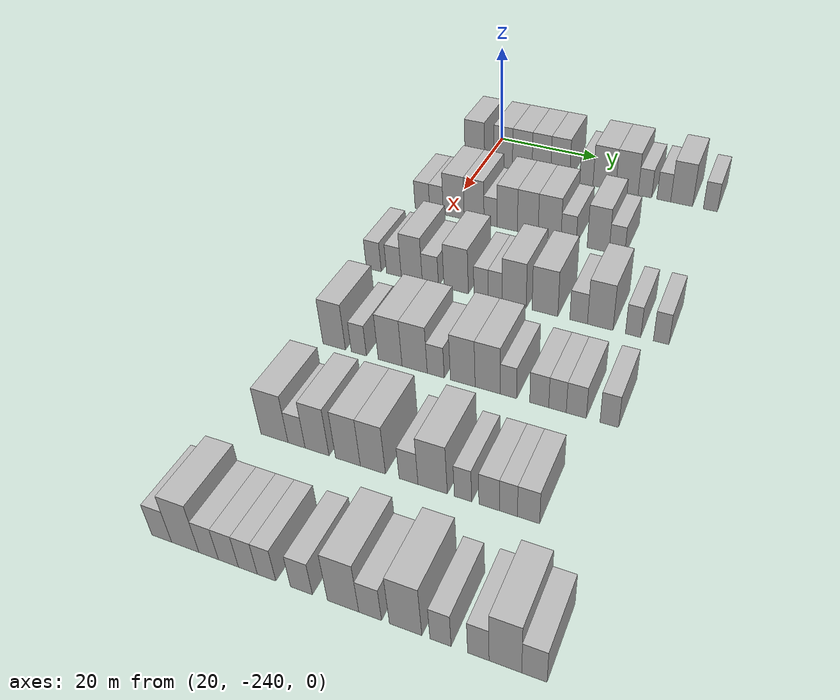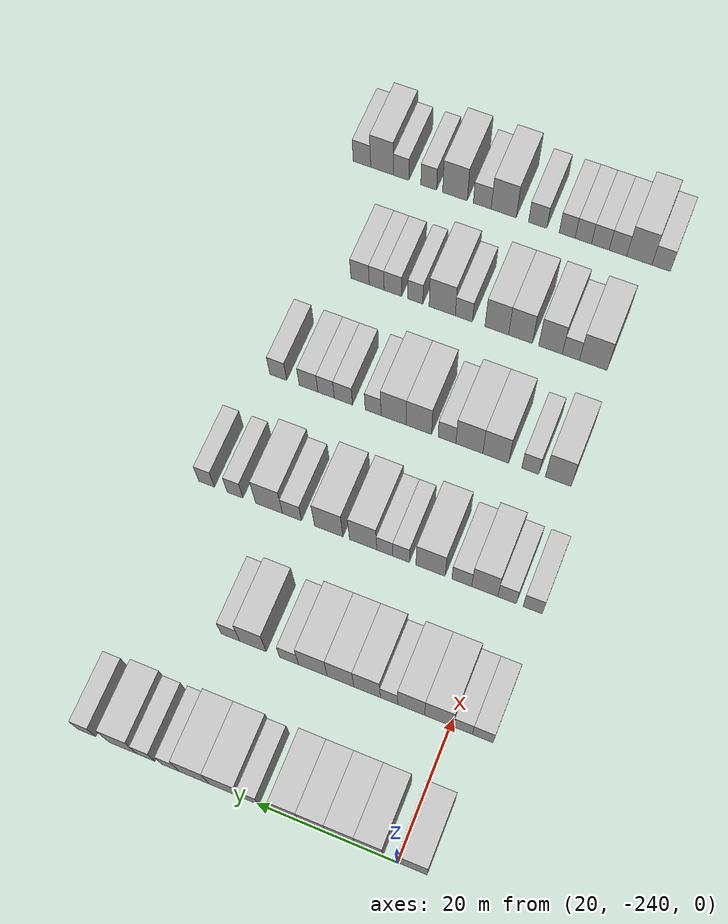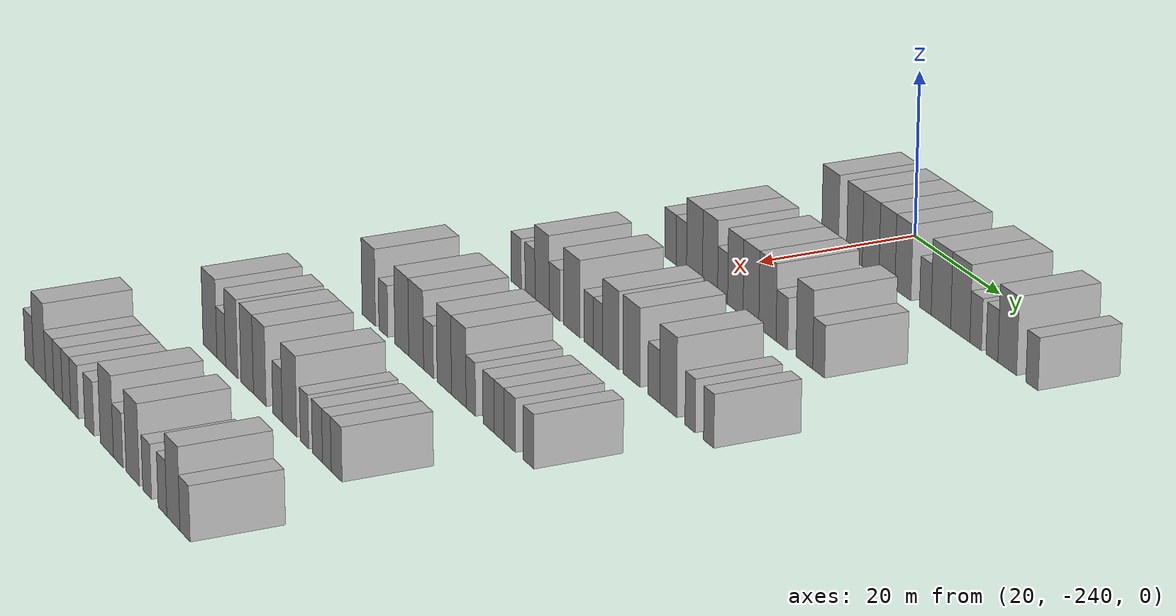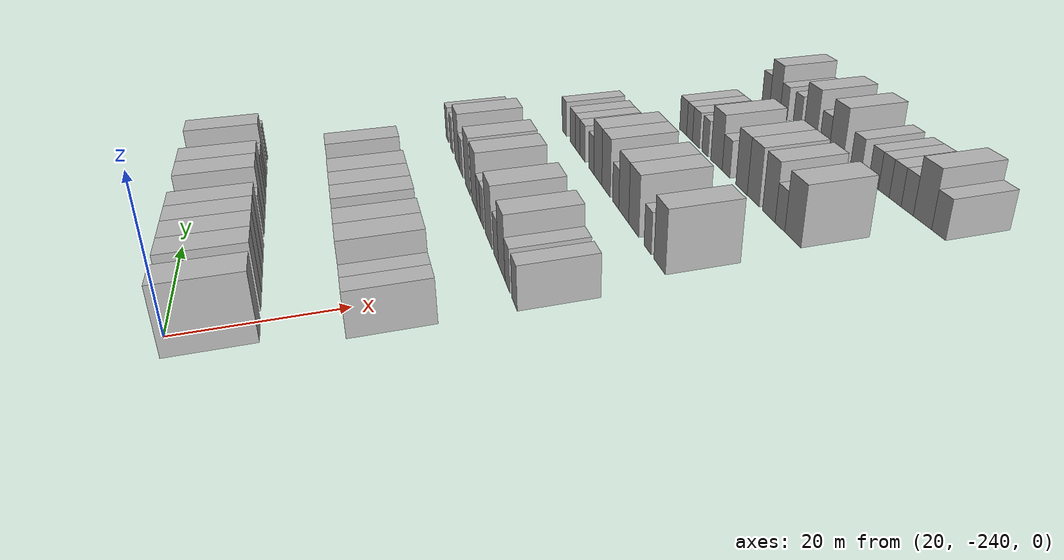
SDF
<sdf version="1.6">
 <world name="default">
  <model name="building_20">
   <static>1</static>
   <pose>25.0000 -241.9784 0 0.000000 0.000000 0.000000</pose>
   <link name="link">
    <pose>0 0 4.50 0 0 0</pose>
    <collision name="collision"><geometry><box><size>10.0000 4.1853 9.0000</size></box></geometry></collision>
    <visual name="visual">
     <cast_shadows>0</cast_shadows>
     <geometry><box><size>10.0000 4.1853 9.0000</size></box></geometry>
     <material>
      <script>
       <uri>model://HANNAS_wall/materials/scripts</uri>
       <uri>model://HANNAS_wall/materials/textures</uri>
       <name>vrc/HANNAS_wall</name>
      </script>
     </material>
    </visual>
   </link>
  </model>
  <model name="building_21">
   <static>1</static>
   <pose>25.0000 -235.9583 0 0.000000 0.000000 0.000000</pose>
   <link name="link">
    <pose>0 0 4.50 0 0 0</pose>
    <collision name="collision"><geometry><box><size>10.0000 3.8551 9.0000</size></box></geometry></collision>
    <visual name="visual">
     <cast_shadows>0</cast_shadows>
     <geometry><box><size>10.0000 3.8551 9.0000</size></box></geometry>
     <material>
      <script>
       <uri>model://HANNAS_wall/materials/scripts</uri>
       <uri>model://HANNAS_wall/materials/textures</uri>
       <name>vrc/HANNAS_wall</name>
      </script>
     </material>
    </visual>
   </link>
  </model>
  <model name="building_22">
   <static>1</static>
   <pose>25.0000 -232.0075 0 0.000000 0.000000 0.000000</pose>
   <link name="link">
    <pose>0 0 4.50 0 0 0</pose>
    <collision name="collision"><geometry><box><size>10.0000 4.0465 9.0000</size></box></geometry></collision>
    <visual name="visual">
     <cast_shadows>0</cast_shadows>
     <geometry><box><size>10.0000 4.0465 9.0000</size></box></geometry>
     <material>
      <script>
       <uri>model://HANNAS_wall/materials/scripts</uri>
       <uri>model://HANNAS_wall/materials/textures</uri>
       <name>vrc/HANNAS_wall</name>
      </script>
     </material>
    </visual>
   </link>
  </model>
  <model name="building_23">
   <static>1</static>
   <pose>25.0000 -228.0677 0 0.000000 0.000000 0.000000</pose>
   <link name="link">
    <pose>0 0 4.50 0 0 0</pose>
    <collision name="collision"><geometry><box><size>10.0000 3.8331 9.0000</size></box></geometry></collision>
    <visual name="visual">
     <cast_shadows>0</cast_shadows>
     <geometry><box><size>10.0000 3.8331 9.0000</size></box></geometry>
     <material>
      <script>
       <uri>model://HANNAS_wall/materials/scripts</uri>
       <uri>model://HANNAS_wall/materials/textures</uri>
       <name>vrc/HANNAS_wall</name>
      </script>
     </material>
    </visual>
   </link>
  </model>
  <model name="building_24">
   <static>1</static>
   <pose>25.0000 -224.2501 0 0.000000 0.000000 0.000000</pose>
   <link name="link">
    <pose>0 0 4.50 0 0 0</pose>
    <collision name="collision"><geometry><box><size>10.0000 3.8020 9.0000</size></box></geometry></collision>
    <visual name="visual">
     <cast_shadows>0</cast_shadows>
     <geometry><box><size>10.0000 3.8020 9.0000</size></box></geometry>
     <material>
      <script>
       <uri>model://HANNAS_wall/materials/scripts</uri>
       <uri>model://HANNAS_wall/materials/textures</uri>
       <name>vrc/HANNAS_wall</name>
      </script>
     </material>
    </visual>
   </link>
  </model>
  <model name="building_25">
   <static>1</static>
   <pose>25.0000 -219.0061 0 0.000000 0.000000 0.000000</pose>
   <link name="link">
    <pose>0 0 3.00 0 0 0</pose>
    <collision name="collision"><geometry><box><size>10.0000 2.6861 6.0000</size></box></geometry></collision>
    <visual name="visual">
     <cast_shadows>0</cast_shadows>
     <geometry><box><size>10.0000 2.6861 6.0000</size></box></geometry>
     <material>
      <script>
       <uri>model://HANNAS_wall/materials/scripts</uri>
       <uri>model://HANNAS_wall/materials/textures</uri>
       <name>vrc/HANNAS_wall</name>
      </script>
     </material>
    </visual>
   </link>
  </model>
  <model name="building_26">
   <static>1</static>
   <pose>25.0000 -215.4294 0 0.000000 0.000000 0.000000</pose>
   <link name="link">
    <pose>0 0 4.50 0 0 0</pose>
    <collision name="collision"><geometry><box><size>10.0000 4.4671 9.0000</size></box></geometry></collision>
    <visual name="visual">
     <cast_shadows>0</cast_shadows>
     <geometry><box><size>10.0000 4.4671 9.0000</size></box></geometry>
     <material>
      <script>
       <uri>model://HANNAS_wall/materials/scripts</uri>
       <uri>model://HANNAS_wall/materials/textures</uri>
       <name>vrc/HANNAS_wall</name>
      </script>
     </material>
    </visual>
   </link>
  </model>
  <model name="building_27">
   <static>1</static>
   <pose>25.0000 -211.0135 0 0.000000 0.000000 0.000000</pose>
   <link name="link">
    <pose>0 0 4.50 0 0 0</pose>
    <collision name="collision"><geometry><box><size>10.0000 4.3647 9.0000</size></box></geometry></collision>
    <visual name="visual">
     <cast_shadows>0</cast_shadows>
     <geometry><box><size>10.0000 4.3647 9.0000</size></box></geometry>
     <material>
      <script>
       <uri>model://HANNAS_wall/materials/scripts</uri>
       <uri>model://HANNAS_wall/materials/textures</uri>
       <name>vrc/HANNAS_wall</name>
      </script>
     </material>
    </visual>
   </link>
  </model>
  <model name="building_28">
   <static>1</static>
   <pose>25.0000 -207.5304 0 0.000000 0.000000 0.000000</pose>
   <link name="link">
    <pose>0 0 3.00 0 0 0</pose>
    <collision name="collision"><geometry><box><size>10.0000 2.6015 6.0000</size></box></geometry></collision>
    <visual name="visual">
     <cast_shadows>0</cast_shadows>
     <geometry><box><size>10.0000 2.6015 6.0000</size></box></geometry>
     <material>
      <script>
       <uri>model://HANNAS_wall/materials/scripts</uri>
       <uri>model://HANNAS_wall/materials/textures</uri>
       <name>vrc/HANNAS_wall</name>
      </script>
     </material>
    </visual>
   </link>
  </model>
  <model name="building_29">
   <static>1</static>
   <pose>25.0000 -203.9215 0 0.000000 0.000000 0.000000</pose>
   <link name="link">
    <pose>0 0 3.00 0 0 0</pose>
    <collision name="collision"><geometry><box><size>10.0000 2.6162 6.0000</size></box></geometry></collision>
    <visual name="visual">
     <cast_shadows>0</cast_shadows>
     <geometry><box><size>10.0000 2.6162 6.0000</size></box></geometry>
     <material>
      <script>
       <uri>model://HANNAS_wall/materials/scripts</uri>
       <uri>model://HANNAS_wall/materials/textures</uri>
       <name>vrc/HANNAS_wall</name>
      </script>
     </material>
    </visual>
   </link>
  </model>
  <model name="building_30">
   <static>1</static>
   <pose>25.0000 -200.5595 0 0.000000 0.000000 0.000000</pose>
   <link name="link">
    <pose>0 0 4.50 0 0 0</pose>
    <collision name="collision"><geometry><box><size>10.0000 4.1078 9.0000</size></box></geometry></collision>
    <visual name="visual">
     <cast_shadows>0</cast_shadows>
     <geometry><box><size>10.0000 4.1078 9.0000</size></box></geometry>
     <material>
      <script>
       <uri>model://HANNAS_wall/materials/scripts</uri>
       <uri>model://HANNAS_wall/materials/textures</uri>
       <name>vrc/HANNAS_wall</name>
      </script>
     </material>
    </visual>
   </link>
  </model>
  <model name="building_31">
   <static>1</static>
   <pose>25.0000 -195.2044 0 0.000000 0.000000 0.000000</pose>
   <link name="link">
    <pose>0 0 3.00 0 0 0</pose>
    <collision name="collision"><geometry><box><size>10.0000 2.6025 6.0000</size></box></geometry></collision>
    <visual name="visual">
     <cast_shadows>0</cast_shadows>
     <geometry><box><size>10.0000 2.6025 6.0000</size></box></geometry>
     <material>
      <script>
       <uri>model://HANNAS_wall/materials/scripts</uri>
       <uri>model://HANNAS_wall/materials/textures</uri>
       <name>vrc/HANNAS_wall</name>
      </script>
     </material>
    </visual>
   </link>
  </model>
  <model name="building_192">
   <static>1</static>
   <pose>44.0000 -244.5426 0 0.000000 0.000000 0.000000</pose>
   <link name="link">
    <pose>0 0 3.00 0 0 0</pose>
    <collision name="collision"><geometry><box><size>10.0000 2.9575 6.0000</size></box></geometry></collision>
    <visual name="visual">
     <cast_shadows>0</cast_shadows>
     <geometry><box><size>10.0000 2.9575 6.0000</size></box></geometry>
     <material>
      <script>
       <uri>model://HANNAS_wall/materials/scripts</uri>
       <uri>model://HANNAS_wall/materials/textures</uri>
       <name>vrc/HANNAS_wall</name>
      </script>
     </material>
    </visual>
   </link>
  </model>
  <model name="building_193">
   <static>1</static>
   <pose>44.0000 -241.7009 0 0.000000 0.000000 0.000000</pose>
   <link name="link">
    <pose>0 0 3.00 0 0 0</pose>
    <collision name="collision"><geometry><box><size>10.0000 2.7259 6.0000</size></box></geometry></collision>
    <visual name="visual">
     <cast_shadows>0</cast_shadows>
     <geometry><box><size>10.0000 2.7259 6.0000</size></box></geometry>
     <material>
      <script>
       <uri>model://HANNAS_wall/materials/scripts</uri>
       <uri>model://HANNAS_wall/materials/textures</uri>
       <name>vrc/HANNAS_wall</name>
      </script>
     </material>
    </visual>
   </link>
  </model>
  <model name="building_194">
   <static>1</static>
   <pose>44.0000 -238.2692 0 0.000000 0.000000 0.000000</pose>
   <link name="link">
    <pose>0 0 4.50 0 0 0</pose>
    <collision name="collision"><geometry><box><size>10.0000 4.1375 9.0000</size></box></geometry></collision>
    <visual name="visual">
     <cast_shadows>0</cast_shadows>
     <geometry><box><size>10.0000 4.1375 9.0000</size></box></geometry>
     <material>
      <script>
       <uri>model://HANNAS_wall/materials/scripts</uri>
       <uri>model://HANNAS_wall/materials/textures</uri>
       <name>vrc/HANNAS_wall</name>
      </script>
     </material>
    </visual>
   </link>
  </model>
  <model name="building_195">
   <static>1</static>
   <pose>44.0000 -234.2643 0 0.000000 0.000000 0.000000</pose>
   <link name="link">
    <pose>0 0 4.50 0 0 0</pose>
    <collision name="collision"><geometry><box><size>10.0000 3.8724 9.0000</size></box></geometry></collision>
    <visual name="visual">
     <cast_shadows>0</cast_shadows>
     <geometry><box><size>10.0000 3.8724 9.0000</size></box></geometry>
     <material>
      <script>
       <uri>model://HANNAS_wall/materials/scripts</uri>
       <uri>model://HANNAS_wall/materials/textures</uri>
       <name>vrc/HANNAS_wall</name>
      </script>
     </material>
    </visual>
   </link>
  </model>
  <model name="building_196">
   <static>1</static>
   <pose>44.0000 -231.0574 0 0.000000 0.000000 0.000000</pose>
   <link name="link">
    <pose>0 0 3.00 0 0 0</pose>
    <collision name="collision"><geometry><box><size>10.0000 2.5414 6.0000</size></box></geometry></collision>
    <visual name="visual">
     <cast_shadows>0</cast_shadows>
     <geometry><box><size>10.0000 2.5414 6.0000</size></box></geometry>
     <material>
      <script>
       <uri>model://HANNAS_wall/materials/scripts</uri>
       <uri>model://HANNAS_wall/materials/textures</uri>
       <name>vrc/HANNAS_wall</name>
      </script>
     </material>
    </visual>
   </link>
  </model>
  <model name="building_197">
   <static>1</static>
   <pose>44.0000 -227.8573 0 0.000000 0.000000 0.000000</pose>
   <link name="link">
    <pose>0 0 4.50 0 0 0</pose>
    <collision name="collision"><geometry><box><size>10.0000 3.8588 9.0000</size></box></geometry></collision>
    <visual name="visual">
     <cast_shadows>0</cast_shadows>
     <geometry><box><size>10.0000 3.8588 9.0000</size></box></geometry>
     <material>
      <script>
       <uri>model://HANNAS_wall/materials/scripts</uri>
       <uri>model://HANNAS_wall/materials/textures</uri>
       <name>vrc/HANNAS_wall</name>
      </script>
     </material>
    </visual>
   </link>
  </model>
  <model name="building_198">
   <static>1</static>
   <pose>44.0000 -223.9796 0 0.000000 0.000000 0.000000</pose>
   <link name="link">
    <pose>0 0 4.50 0 0 0</pose>
    <collision name="collision"><geometry><box><size>10.0000 3.8966 9.0000</size></box></geometry></collision>
    <visual name="visual">
     <cast_shadows>0</cast_shadows>
     <geometry><box><size>10.0000 3.8966 9.0000</size></box></geometry>
     <material>
      <script>
       <uri>model://HANNAS_wall/materials/scripts</uri>
       <uri>model://HANNAS_wall/materials/textures</uri>
       <name>vrc/HANNAS_wall</name>
      </script>
     </material>
    </visual>
   </link>
  </model>
  <model name="building_199">
   <static>1</static>
   <pose>44.0000 -219.9167 0 0.000000 0.000000 0.000000</pose>
   <link name="link">
    <pose>0 0 4.50 0 0 0</pose>
    <collision name="collision"><geometry><box><size>10.0000 4.2292 9.0000</size></box></geometry></collision>
    <visual name="visual">
     <cast_shadows>0</cast_shadows>
     <geometry><box><size>10.0000 4.2292 9.0000</size></box></geometry>
     <material>
      <script>
       <uri>model://HANNAS_wall/materials/scripts</uri>
       <uri>model://HANNAS_wall/materials/textures</uri>
       <name>vrc/HANNAS_wall</name>
      </script>
     </material>
    </visual>
   </link>
  </model>
  <model name="building_200">
   <static>1</static>
   <pose>44.0000 -216.3954 0 0.000000 0.000000 0.000000</pose>
   <link name="link">
    <pose>0 0 3.00 0 0 0</pose>
    <collision name="collision"><geometry><box><size>10.0000 2.8133 6.0000</size></box></geometry></collision>
    <visual name="visual">
     <cast_shadows>0</cast_shadows>
     <geometry><box><size>10.0000 2.8133 6.0000</size></box></geometry>
     <material>
      <script>
       <uri>model://HANNAS_wall/materials/scripts</uri>
       <uri>model://HANNAS_wall/materials/textures</uri>
       <name>vrc/HANNAS_wall</name>
      </script>
     </material>
    </visual>
   </link>
  </model>
  <model name="building_201">
   <static>1</static>
   <pose>44.0000 -211.0140 0 0.000000 0.000000 0.000000</pose>
   <link name="link">
    <pose>0 0 4.50 0 0 0</pose>
    <collision name="collision"><geometry><box><size>10.0000 3.9497 9.0000</size></box></geometry></collision>
    <visual name="visual">
     <cast_shadows>0</cast_shadows>
     <geometry><box><size>10.0000 3.9497 9.0000</size></box></geometry>
     <material>
      <script>
       <uri>model://HANNAS_wall/materials/scripts</uri>
       <uri>model://HANNAS_wall/materials/textures</uri>
       <name>vrc/HANNAS_wall</name>
      </script>
     </material>
    </visual>
   </link>
  </model>
  <model name="building_202">
   <static>1</static>
   <pose>44.0000 -207.6491 0 0.000000 0.000000 0.000000</pose>
   <link name="link">
    <pose>0 0 3.00 0 0 0</pose>
    <collision name="collision"><geometry><box><size>10.0000 2.7800 6.0000</size></box></geometry></collision>
    <visual name="visual">
     <cast_shadows>0</cast_shadows>
     <geometry><box><size>10.0000 2.7800 6.0000</size></box></geometry>
     <material>
      <script>
       <uri>model://HANNAS_wall/materials/scripts</uri>
       <uri>model://HANNAS_wall/materials/textures</uri>
       <name>vrc/HANNAS_wall</name>
      </script>
     </material>
    </visual>
   </link>
  </model>
  <model name="building_360">
   <static>1</static>
   <pose>63.0000 -244.7106 0 0.000000 0.000000 0.000000</pose>
   <link name="link">
    <pose>0 0 3.00 0 0 0</pose>
    <collision name="collision"><geometry><box><size>10.0000 2.8154 6.0000</size></box></geometry></collision>
    <visual name="visual">
     <cast_shadows>0</cast_shadows>
     <geometry><box><size>10.0000 2.8154 6.0000</size></box></geometry>
     <material>
      <script>
       <uri>model://HANNAS_wall/materials/scripts</uri>
       <uri>model://HANNAS_wall/materials/textures</uri>
       <name>vrc/HANNAS_wall</name>
      </script>
     </material>
    </visual>
   </link>
  </model>
  <model name="building_361">
   <static>1</static>
   <pose>63.0000 -240.9330 0 0.000000 0.000000 0.000000</pose>
   <link name="link">
    <pose>0 0 3.00 0 0 0</pose>
    <collision name="collision"><geometry><box><size>10.0000 2.7398 6.0000</size></box></geometry></collision>
    <visual name="visual">
     <cast_shadows>0</cast_shadows>
     <geometry><box><size>10.0000 2.7398 6.0000</size></box></geometry>
     <material>
      <script>
       <uri>model://HANNAS_wall/materials/scripts</uri>
       <uri>model://HANNAS_wall/materials/textures</uri>
       <name>vrc/HANNAS_wall</name>
      </script>
     </material>
    </visual>
   </link>
  </model>
  <model name="building_362">
   <static>1</static>
   <pose>63.0000 -237.6325 0 0.000000 0.000000 0.000000</pose>
   <link name="link">
    <pose>0 0 4.50 0 0 0</pose>
    <collision name="collision"><geometry><box><size>10.0000 3.8611 9.0000</size></box></geometry></collision>
    <visual name="visual">
     <cast_shadows>0</cast_shadows>
     <geometry><box><size>10.0000 3.8611 9.0000</size></box></geometry>
     <material>
      <script>
       <uri>model://HANNAS_wall/materials/scripts</uri>
       <uri>model://HANNAS_wall/materials/textures</uri>
       <name>vrc/HANNAS_wall</name>
      </script>
     </material>
    </visual>
   </link>
  </model>
  <model name="building_363">
   <static>1</static>
   <pose>63.0000 -234.2293 0 0.000000 0.000000 0.000000</pose>
   <link name="link">
    <pose>0 0 3.00 0 0 0</pose>
    <collision name="collision"><geometry><box><size>10.0000 2.9455 6.0000</size></box></geometry></collision>
    <visual name="visual">
     <cast_shadows>0</cast_shadows>
     <geometry><box><size>10.0000 2.9455 6.0000</size></box></geometry>
     <material>
      <script>
       <uri>model://HANNAS_wall/materials/scripts</uri>
       <uri>model://HANNAS_wall/materials/textures</uri>
       <name>vrc/HANNAS_wall</name>
      </script>
     </material>
    </visual>
   </link>
  </model>
  <model name="building_364">
   <static>1</static>
   <pose>63.0000 -229.5811 0 0.000000 0.000000 0.000000</pose>
   <link name="link">
    <pose>0 0 4.50 0 0 0</pose>
    <collision name="collision"><geometry><box><size>10.0000 4.3509 9.0000</size></box></geometry></collision>
    <visual name="visual">
     <cast_shadows>0</cast_shadows>
     <geometry><box><size>10.0000 4.3509 9.0000</size></box></geometry>
     <material>
      <script>
       <uri>model://HANNAS_wall/materials/scripts</uri>
       <uri>model://HANNAS_wall/materials/textures</uri>
       <name>vrc/HANNAS_wall</name>
      </script>
     </material>
    </visual>
   </link>
  </model>
  <model name="building_365">
   <static>1</static>
   <pose>63.0000 -225.1615 0 0.000000 0.000000 0.000000</pose>
   <link name="link">
    <pose>0 0 3.00 0 0 0</pose>
    <collision name="collision"><geometry><box><size>10.0000 2.4884 6.0000</size></box></geometry></collision>
    <visual name="visual">
     <cast_shadows>0</cast_shadows>
     <geometry><box><size>10.0000 2.4884 6.0000</size></box></geometry>
     <material>
      <script>
       <uri>model://HANNAS_wall/materials/scripts</uri>
       <uri>model://HANNAS_wall/materials/textures</uri>
       <name>vrc/HANNAS_wall</name>
      </script>
     </material>
    </visual>
   </link>
  </model>
  <model name="building_366">
   <static>1</static>
   <pose>63.0000 -222.7112 0 0.000000 0.000000 0.000000</pose>
   <link name="link">
    <pose>0 0 3.00 0 0 0</pose>
    <collision name="collision"><geometry><box><size>10.0000 2.4122 6.0000</size></box></geometry></collision>
    <visual name="visual">
     <cast_shadows>0</cast_shadows>
     <geometry><box><size>10.0000 2.4122 6.0000</size></box></geometry>
     <material>
      <script>
       <uri>model://HANNAS_wall/materials/scripts</uri>
       <uri>model://HANNAS_wall/materials/textures</uri>
       <name>vrc/HANNAS_wall</name>
      </script>
     </material>
    </visual>
   </link>
  </model>
  <model name="building_367">
   <static>1</static>
   <pose>63.0000 -219.4327 0 0.000000 0.000000 0.000000</pose>
   <link name="link">
    <pose>0 0 4.50 0 0 0</pose>
    <collision name="collision"><geometry><box><size>10.0000 4.1448 9.0000</size></box></geometry></collision>
    <visual name="visual">
     <cast_shadows>0</cast_shadows>
     <geometry><box><size>10.0000 4.1448 9.0000</size></box></geometry>
     <material>
      <script>
       <uri>model://HANNAS_wall/materials/scripts</uri>
       <uri>model://HANNAS_wall/materials/textures</uri>
       <name>vrc/HANNAS_wall</name>
      </script>
     </material>
    </visual>
   </link>
  </model>
  <model name="building_368">
   <static>1</static>
   <pose>63.0000 -214.1895 0 0.000000 0.000000 0.000000</pose>
   <link name="link">
    <pose>0 0 4.50 0 0 0</pose>
    <collision name="collision"><geometry><box><size>10.0000 4.3415 9.0000</size></box></geometry></collision>
    <visual name="visual">
     <cast_shadows>0</cast_shadows>
     <geometry><box><size>10.0000 4.3415 9.0000</size></box></geometry>
     <material>
      <script>
       <uri>model://HANNAS_wall/materials/scripts</uri>
       <uri>model://HANNAS_wall/materials/textures</uri>
       <name>vrc/HANNAS_wall</name>
      </script>
     </material>
    </visual>
   </link>
  </model>
  <model name="building_369">
   <static>1</static>
   <pose>63.0000 -208.5668 0 0.000000 0.000000 0.000000</pose>
   <link name="link">
    <pose>0 0 3.00 0 0 0</pose>
    <collision name="collision"><geometry><box><size>10.0000 2.9040 6.0000</size></box></geometry></collision>
    <visual name="visual">
     <cast_shadows>0</cast_shadows>
     <geometry><box><size>10.0000 2.9040 6.0000</size></box></geometry>
     <material>
      <script>
       <uri>model://HANNAS_wall/materials/scripts</uri>
       <uri>model://HANNAS_wall/materials/textures</uri>
       <name>vrc/HANNAS_wall</name>
      </script>
     </material>
    </visual>
   </link>
  </model>
  <model name="building_370">
   <static>1</static>
   <pose>63.0000 -205.0357 0 0.000000 0.000000 0.000000</pose>
   <link name="link">
    <pose>0 0 4.50 0 0 0</pose>
    <collision name="collision"><geometry><box><size>10.0000 4.1581 9.0000</size></box></geometry></collision>
    <visual name="visual">
     <cast_shadows>0</cast_shadows>
     <geometry><box><size>10.0000 4.1581 9.0000</size></box></geometry>
     <material>
      <script>
       <uri>model://HANNAS_wall/materials/scripts</uri>
       <uri>model://HANNAS_wall/materials/textures</uri>
       <name>vrc/HANNAS_wall</name>
      </script>
     </material>
    </visual>
   </link>
  </model>
  <model name="building_371">
   <static>1</static>
   <pose>63.0000 -199.7404 0 0.000000 0.000000 0.000000</pose>
   <link name="link">
    <pose>0 0 3.00 0 0 0</pose>
    <collision name="collision"><geometry><box><size>10.0000 2.4325 6.0000</size></box></geometry></collision>
    <visual name="visual">
     <cast_shadows>0</cast_shadows>
     <geometry><box><size>10.0000 2.4325 6.0000</size></box></geometry>
     <material>
      <script>
       <uri>model://HANNAS_wall/materials/scripts</uri>
       <uri>model://HANNAS_wall/materials/textures</uri>
       <name>vrc/HANNAS_wall</name>
      </script>
     </material>
    </visual>
   </link>
  </model>
  <model name="building_372">
   <static>1</static>
   <pose>63.0000 -195.3007 0 0.000000 0.000000 0.000000</pose>
   <link name="link">
    <pose>0 0 3.00 0 0 0</pose>
    <collision name="collision"><geometry><box><size>10.0000 2.4469 6.0000</size></box></geometry></collision>
    <visual name="visual">
     <cast_shadows>0</cast_shadows>
     <geometry><box><size>10.0000 2.4469 6.0000</size></box></geometry>
     <material>
      <script>
       <uri>model://HANNAS_wall/materials/scripts</uri>
       <uri>model://HANNAS_wall/materials/textures</uri>
       <name>vrc/HANNAS_wall</name>
      </script>
     </material>
    </visual>
   </link>
  </model>
  <model name="building_534">
   <static>1</static>
   <pose>82.0000 -241.6577 0 0.000000 0.000000 0.000000</pose>
   <link name="link">
    <pose>0 0 4.50 0 0 0</pose>
    <collision name="collision"><geometry><box><size>10.0000 3.9068 9.0000</size></box></geometry></collision>
    <visual name="visual">
     <cast_shadows>0</cast_shadows>
     <geometry><box><size>10.0000 3.9068 9.0000</size></box></geometry>
     <material>
      <script>
       <uri>model://HANNAS_wall/materials/scripts</uri>
       <uri>model://HANNAS_wall/materials/textures</uri>
       <name>vrc/HANNAS_wall</name>
      </script>
     </material>
    </visual>
   </link>
  </model>
  <model name="building_535">
   <static>1</static>
   <pose>82.0000 -237.4141 0 0.000000 0.000000 0.000000</pose>
   <link name="link">
    <pose>0 0 3.00 0 0 0</pose>
    <collision name="collision"><geometry><box><size>10.0000 2.5805 6.0000</size></box></geometry></collision>
    <visual name="visual">
     <cast_shadows>0</cast_shadows>
     <geometry><box><size>10.0000 2.5805 6.0000</size></box></geometry>
     <material>
      <script>
       <uri>model://HANNAS_wall/materials/scripts</uri>
       <uri>model://HANNAS_wall/materials/textures</uri>
       <name>vrc/HANNAS_wall</name>
      </script>
     </material>
    </visual>
   </link>
  </model>
  <model name="building_536">
   <static>1</static>
   <pose>82.0000 -232.1395 0 0.000000 0.000000 0.000000</pose>
   <link name="link">
    <pose>0 0 4.50 0 0 0</pose>
    <collision name="collision"><geometry><box><size>10.0000 3.9686 9.0000</size></box></geometry></collision>
    <visual name="visual">
     <cast_shadows>0</cast_shadows>
     <geometry><box><size>10.0000 3.9686 9.0000</size></box></geometry>
     <material>
      <script>
       <uri>model://HANNAS_wall/materials/scripts</uri>
       <uri>model://HANNAS_wall/materials/textures</uri>
       <name>vrc/HANNAS_wall</name>
      </script>
     </material>
    </visual>
   </link>
  </model>
  <model name="building_537">
   <static>1</static>
   <pose>82.0000 -228.0844 0 0.000000 0.000000 0.000000</pose>
   <link name="link">
    <pose>0 0 4.50 0 0 0</pose>
    <collision name="collision"><geometry><box><size>10.0000 4.1416 9.0000</size></box></geometry></collision>
    <visual name="visual">
     <cast_shadows>0</cast_shadows>
     <geometry><box><size>10.0000 4.1416 9.0000</size></box></geometry>
     <material>
      <script>
       <uri>model://HANNAS_wall/materials/scripts</uri>
       <uri>model://HANNAS_wall/materials/textures</uri>
       <name>vrc/HANNAS_wall</name>
      </script>
     </material>
    </visual>
   </link>
  </model>
  <model name="building_538">
   <static>1</static>
   <pose>82.0000 -224.6398 0 0.000000 0.000000 0.000000</pose>
   <link name="link">
    <pose>0 0 3.00 0 0 0</pose>
    <collision name="collision"><geometry><box><size>10.0000 2.7476 6.0000</size></box></geometry></collision>
    <visual name="visual">
     <cast_shadows>0</cast_shadows>
     <geometry><box><size>10.0000 2.7476 6.0000</size></box></geometry>
     <material>
      <script>
       <uri>model://HANNAS_wall/materials/scripts</uri>
       <uri>model://HANNAS_wall/materials/textures</uri>
       <name>vrc/HANNAS_wall</name>
      </script>
     </material>
    </visual>
   </link>
  </model>
  <model name="building_539">
   <static>1</static>
   <pose>82.0000 -220.3078 0 0.000000 0.000000 0.000000</pose>
   <link name="link">
    <pose>0 0 4.50 0 0 0</pose>
    <collision name="collision"><geometry><box><size>10.0000 3.9163 9.0000</size></box></geometry></collision>
    <visual name="visual">
     <cast_shadows>0</cast_shadows>
     <geometry><box><size>10.0000 3.9163 9.0000</size></box></geometry>
     <material>
      <script>
       <uri>model://HANNAS_wall/materials/scripts</uri>
       <uri>model://HANNAS_wall/materials/textures</uri>
       <name>vrc/HANNAS_wall</name>
      </script>
     </material>
    </visual>
   </link>
  </model>
  <model name="building_540">
   <static>1</static>
   <pose>82.0000 -216.3702 0 0.000000 0.000000 0.000000</pose>
   <link name="link">
    <pose>0 0 4.50 0 0 0</pose>
    <collision name="collision"><geometry><box><size>10.0000 3.9590 9.0000</size></box></geometry></collision>
    <visual name="visual">
     <cast_shadows>0</cast_shadows>
     <geometry><box><size>10.0000 3.9590 9.0000</size></box></geometry>
     <material>
      <script>
       <uri>model://HANNAS_wall/materials/scripts</uri>
       <uri>model://HANNAS_wall/materials/textures</uri>
       <name>vrc/HANNAS_wall</name>
      </script>
     </material>
    </visual>
   </link>
  </model>
  <model name="building_541">
   <static>1</static>
   <pose>82.0000 -213.1465 0 0.000000 0.000000 0.000000</pose>
   <link name="link">
    <pose>0 0 3.00 0 0 0</pose>
    <collision name="collision"><geometry><box><size>10.0000 2.4882 6.0000</size></box></geometry></collision>
    <visual name="visual">
     <cast_shadows>0</cast_shadows>
     <geometry><box><size>10.0000 2.4882 6.0000</size></box></geometry>
     <material>
      <script>
       <uri>model://HANNAS_wall/materials/scripts</uri>
       <uri>model://HANNAS_wall/materials/textures</uri>
       <name>vrc/HANNAS_wall</name>
      </script>
     </material>
    </visual>
   </link>
  </model>
  <model name="building_542">
   <static>1</static>
   <pose>82.0000 -208.4691 0 0.000000 0.000000 0.000000</pose>
   <link name="link">
    <pose>0 0 3.00 0 0 0</pose>
    <collision name="collision"><geometry><box><size>10.0000 2.8666 6.0000</size></box></geometry></collision>
    <visual name="visual">
     <cast_shadows>0</cast_shadows>
     <geometry><box><size>10.0000 2.8666 6.0000</size></box></geometry>
     <material>
      <script>
       <uri>model://HANNAS_wall/materials/scripts</uri>
       <uri>model://HANNAS_wall/materials/textures</uri>
       <name>vrc/HANNAS_wall</name>
      </script>
     </material>
    </visual>
   </link>
  </model>
  <model name="building_543">
   <static>1</static>
   <pose>82.0000 -205.7301 0 0.000000 0.000000 0.000000</pose>
   <link name="link">
    <pose>0 0 3.00 0 0 0</pose>
    <collision name="collision"><geometry><box><size>10.0000 2.6114 6.0000</size></box></geometry></collision>
    <visual name="visual">
     <cast_shadows>0</cast_shadows>
     <geometry><box><size>10.0000 2.6114 6.0000</size></box></geometry>
     <material>
      <script>
       <uri>model://HANNAS_wall/materials/scripts</uri>
       <uri>model://HANNAS_wall/materials/textures</uri>
       <name>vrc/HANNAS_wall</name>
      </script>
     </material>
    </visual>
   </link>
  </model>
  <model name="building_544">
   <static>1</static>
   <pose>82.0000 -202.9427 0 0.000000 0.000000 0.000000</pose>
   <link name="link">
    <pose>0 0 3.00 0 0 0</pose>
    <collision name="collision"><geometry><box><size>10.0000 2.9634 6.0000</size></box></geometry></collision>
    <visual name="visual">
     <cast_shadows>0</cast_shadows>
     <geometry><box><size>10.0000 2.9634 6.0000</size></box></geometry>
     <material>
      <script>
       <uri>model://HANNAS_wall/materials/scripts</uri>
       <uri>model://HANNAS_wall/materials/textures</uri>
       <name>vrc/HANNAS_wall</name>
      </script>
     </material>
    </visual>
   </link>
  </model>
  <model name="building_545">
   <static>1</static>
   <pose>82.0000 -198.1142 0 0.000000 0.000000 0.000000</pose>
   <link name="link">
    <pose>0 0 3.00 0 0 0</pose>
    <collision name="collision"><geometry><box><size>10.0000 2.6937 6.0000</size></box></geometry></collision>
    <visual name="visual">
     <cast_shadows>0</cast_shadows>
     <geometry><box><size>10.0000 2.6937 6.0000</size></box></geometry>
     <material>
      <script>
       <uri>model://HANNAS_wall/materials/scripts</uri>
       <uri>model://HANNAS_wall/materials/textures</uri>
       <name>vrc/HANNAS_wall</name>
      </script>
     </material>
    </visual>
   </link>
  </model>
  <model name="building_713">
   <static>1</static>
   <pose>101.0000 -240.3343 0 0.000000 0.000000 0.000000</pose>
   <link name="link">
    <pose>0 0 4.50 0 0 0</pose>
    <collision name="collision"><geometry><box><size>10.0000 4.3068 9.0000</size></box></geometry></collision>
    <visual name="visual">
     <cast_shadows>0</cast_shadows>
     <geometry><box><size>10.0000 4.3068 9.0000</size></box></geometry>
     <material>
      <script>
       <uri>model://HANNAS_wall/materials/scripts</uri>
       <uri>model://HANNAS_wall/materials/textures</uri>
       <name>vrc/HANNAS_wall</name>
      </script>
     </material>
    </visual>
   </link>
  </model>
  <model name="building_714">
   <static>1</static>
   <pose>101.0000 -236.8385 0 0.000000 0.000000 0.000000</pose>
   <link name="link">
    <pose>0 0 3.00 0 0 0</pose>
    <collision name="collision"><geometry><box><size>10.0000 2.6846 6.0000</size></box></geometry></collision>
    <visual name="visual">
     <cast_shadows>0</cast_shadows>
     <geometry><box><size>10.0000 2.6846 6.0000</size></box></geometry>
     <material>
      <script>
       <uri>model://HANNAS_wall/materials/scripts</uri>
       <uri>model://HANNAS_wall/materials/textures</uri>
       <name>vrc/HANNAS_wall</name>
      </script>
     </material>
    </visual>
   </link>
  </model>
  <model name="building_715">
   <static>1</static>
   <pose>101.0000 -233.6472 0 0.000000 0.000000 0.000000</pose>
   <link name="link">
    <pose>0 0 4.50 0 0 0</pose>
    <collision name="collision"><geometry><box><size>10.0000 3.6981 9.0000</size></box></geometry></collision>
    <visual name="visual">
     <cast_shadows>0</cast_shadows>
     <geometry><box><size>10.0000 3.6981 9.0000</size></box></geometry>
     <material>
      <script>
       <uri>model://HANNAS_wall/materials/scripts</uri>
       <uri>model://HANNAS_wall/materials/textures</uri>
       <name>vrc/HANNAS_wall</name>
      </script>
     </material>
    </visual>
   </link>
  </model>
  <model name="building_716">
   <static>1</static>
   <pose>101.0000 -228.9244 0 0.000000 0.000000 0.000000</pose>
   <link name="link">
    <pose>0 0 4.50 0 0 0</pose>
    <collision name="collision"><geometry><box><size>10.0000 3.7474 9.0000</size></box></geometry></collision>
    <visual name="visual">
     <cast_shadows>0</cast_shadows>
     <geometry><box><size>10.0000 3.7474 9.0000</size></box></geometry>
     <material>
      <script>
       <uri>model://HANNAS_wall/materials/scripts</uri>
       <uri>model://HANNAS_wall/materials/textures</uri>
       <name>vrc/HANNAS_wall</name>
      </script>
     </material>
    </visual>
   </link>
  </model>
  <model name="building_717">
   <static>1</static>
   <pose>101.0000 -225.1812 0 0.000000 0.000000 0.000000</pose>
   <link name="link">
    <pose>0 0 4.50 0 0 0</pose>
    <collision name="collision"><geometry><box><size>10.0000 3.7392 9.0000</size></box></geometry></collision>
    <visual name="visual">
     <cast_shadows>0</cast_shadows>
     <geometry><box><size>10.0000 3.7392 9.0000</size></box></geometry>
     <material>
      <script>
       <uri>model://HANNAS_wall/materials/scripts</uri>
       <uri>model://HANNAS_wall/materials/textures</uri>
       <name>vrc/HANNAS_wall</name>
      </script>
     </material>
    </visual>
   </link>
  </model>
  <model name="building_718">
   <static>1</static>
   <pose>101.0000 -219.9389 0 0.000000 0.000000 0.000000</pose>
   <link name="link">
    <pose>0 0 3.00 0 0 0</pose>
    <collision name="collision"><geometry><box><size>10.0000 2.7453 6.0000</size></box></geometry></collision>
    <visual name="visual">
     <cast_shadows>0</cast_shadows>
     <geometry><box><size>10.0000 2.7453 6.0000</size></box></geometry>
     <material>
      <script>
       <uri>model://HANNAS_wall/materials/scripts</uri>
       <uri>model://HANNAS_wall/materials/textures</uri>
       <name>vrc/HANNAS_wall</name>
      </script>
     </material>
    </visual>
   </link>
  </model>
  <model name="building_719">
   <static>1</static>
   <pose>101.0000 -216.4735 0 0.000000 0.000000 0.000000</pose>
   <link name="link">
    <pose>0 0 4.50 0 0 0</pose>
    <collision name="collision"><geometry><box><size>10.0000 4.1855 9.0000</size></box></geometry></collision>
    <visual name="visual">
     <cast_shadows>0</cast_shadows>
     <geometry><box><size>10.0000 4.1855 9.0000</size></box></geometry>
     <material>
      <script>
       <uri>model://HANNAS_wall/materials/scripts</uri>
       <uri>model://HANNAS_wall/materials/textures</uri>
       <name>vrc/HANNAS_wall</name>
      </script>
     </material>
    </visual>
   </link>
  </model>
  <model name="building_720">
   <static>1</static>
   <pose>101.0000 -212.1733 0 0.000000 0.000000 0.000000</pose>
   <link name="link">
    <pose>0 0 3.00 0 0 0</pose>
    <collision name="collision"><geometry><box><size>10.0000 2.4150 6.0000</size></box></geometry></collision>
    <visual name="visual">
     <cast_shadows>0</cast_shadows>
     <geometry><box><size>10.0000 2.4150 6.0000</size></box></geometry>
     <material>
      <script>
       <uri>model://HANNAS_wall/materials/scripts</uri>
       <uri>model://HANNAS_wall/materials/textures</uri>
       <name>vrc/HANNAS_wall</name>
      </script>
     </material>
    </visual>
   </link>
  </model>
  <model name="building_721">
   <static>1</static>
   <pose>101.0000 -208.5474 0 0.000000 0.000000 0.000000</pose>
   <link name="link">
    <pose>0 0 3.00 0 0 0</pose>
    <collision name="collision"><geometry><box><size>10.0000 2.8367 6.0000</size></box></geometry></collision>
    <visual name="visual">
     <cast_shadows>0</cast_shadows>
     <geometry><box><size>10.0000 2.8367 6.0000</size></box></geometry>
     <material>
      <script>
       <uri>model://HANNAS_wall/materials/scripts</uri>
       <uri>model://HANNAS_wall/materials/textures</uri>
       <name>vrc/HANNAS_wall</name>
      </script>
     </material>
    </visual>
   </link>
  </model>
  <model name="building_722">
   <static>1</static>
   <pose>101.0000 -205.9162 0 0.000000 0.000000 0.000000</pose>
   <link name="link">
    <pose>0 0 3.00 0 0 0</pose>
    <collision name="collision"><geometry><box><size>10.0000 2.4258 6.0000</size></box></geometry></collision>
    <visual name="visual">
     <cast_shadows>0</cast_shadows>
     <geometry><box><size>10.0000 2.4258 6.0000</size></box></geometry>
     <material>
      <script>
       <uri>model://HANNAS_wall/materials/scripts</uri>
       <uri>model://HANNAS_wall/materials/textures</uri>
       <name>vrc/HANNAS_wall</name>
      </script>
     </material>
    </visual>
   </link>
  </model>
  <model name="building_723">
   <static>1</static>
   <pose>101.0000 -203.2136 0 0.000000 0.000000 0.000000</pose>
   <link name="link">
    <pose>0 0 3.00 0 0 0</pose>
    <collision name="collision"><geometry><box><size>10.0000 2.9792 6.0000</size></box></geometry></collision>
    <visual name="visual">
     <cast_shadows>0</cast_shadows>
     <geometry><box><size>10.0000 2.9792 6.0000</size></box></geometry>
     <material>
      <script>
       <uri>model://HANNAS_wall/materials/scripts</uri>
       <uri>model://HANNAS_wall/materials/textures</uri>
       <name>vrc/HANNAS_wall</name>
      </script>
     </material>
    </visual>
   </link>
  </model>
  <model name="building_869">
   <static>1</static>
   <pose>120.0000 -244.5843 0 0.000000 0.000000 0.000000</pose>
   <link name="link">
    <pose>0 0 3.00 0 0 0</pose>
    <collision name="collision"><geometry><box><size>10.0000 2.9383 6.0000</size></box></geometry></collision>
    <visual name="visual">
     <cast_shadows>0</cast_shadows>
     <geometry><box><size>10.0000 2.9383 6.0000</size></box></geometry>
     <material>
      <script>
       <uri>model://HANNAS_wall/materials/scripts</uri>
       <uri>model://HANNAS_wall/materials/textures</uri>
       <name>vrc/HANNAS_wall</name>
      </script>
     </material>
    </visual>
   </link>
  </model>
  <model name="building_870">
   <static>1</static>
   <pose>120.0000 -241.1113 0 0.000000 0.000000 0.000000</pose>
   <link name="link">
    <pose>0 0 4.50 0 0 0</pose>
    <collision name="collision"><geometry><box><size>10.0000 4.0079 9.0000</size></box></geometry></collision>
    <visual name="visual">
     <cast_shadows>0</cast_shadows>
     <geometry><box><size>10.0000 4.0079 9.0000</size></box></geometry>
     <material>
      <script>
       <uri>model://HANNAS_wall/materials/scripts</uri>
       <uri>model://HANNAS_wall/materials/textures</uri>
       <name>vrc/HANNAS_wall</name>
      </script>
     </material>
    </visual>
   </link>
  </model>
  <model name="building_871">
   <static>1</static>
   <pose>120.0000 -237.7010 0 0.000000 0.000000 0.000000</pose>
   <link name="link">
    <pose>0 0 3.00 0 0 0</pose>
    <collision name="collision"><geometry><box><size>10.0000 2.8126 6.0000</size></box></geometry></collision>
    <visual name="visual">
     <cast_shadows>0</cast_shadows>
     <geometry><box><size>10.0000 2.8126 6.0000</size></box></geometry>
     <material>
      <script>
       <uri>model://HANNAS_wall/materials/scripts</uri>
       <uri>model://HANNAS_wall/materials/textures</uri>
       <name>vrc/HANNAS_wall</name>
      </script>
     </material>
    </visual>
   </link>
  </model>
  <model name="building_872">
   <static>1</static>
   <pose>120.0000 -234.8688 0 0.000000 0.000000 0.000000</pose>
   <link name="link">
    <pose>0 0 3.00 0 0 0</pose>
    <collision name="collision"><geometry><box><size>10.0000 2.8517 6.0000</size></box></geometry></collision>
    <visual name="visual">
     <cast_shadows>0</cast_shadows>
     <geometry><box><size>10.0000 2.8517 6.0000</size></box></geometry>
     <material>
      <script>
       <uri>model://HANNAS_wall/materials/scripts</uri>
       <uri>model://HANNAS_wall/materials/textures</uri>
       <name>vrc/HANNAS_wall</name>
      </script>
     </material>
    </visual>
   </link>
  </model>
  <model name="building_873">
   <static>1</static>
   <pose>120.0000 -232.1161 0 0.000000 0.000000 0.000000</pose>
   <link name="link">
    <pose>0 0 3.00 0 0 0</pose>
    <collision name="collision"><geometry><box><size>10.0000 2.6538 6.0000</size></box></geometry></collision>
    <visual name="visual">
     <cast_shadows>0</cast_shadows>
     <geometry><box><size>10.0000 2.6538 6.0000</size></box></geometry>
     <material>
      <script>
       <uri>model://HANNAS_wall/materials/scripts</uri>
       <uri>model://HANNAS_wall/materials/textures</uri>
       <name>vrc/HANNAS_wall</name>
      </script>
     </material>
    </visual>
   </link>
  </model>
  <model name="building_874">
   <static>1</static>
   <pose>120.0000 -229.5072 0 0.000000 0.000000 0.000000</pose>
   <link name="link">
    <pose>0 0 3.00 0 0 0</pose>
    <collision name="collision"><geometry><box><size>10.0000 2.5640 6.0000</size></box></geometry></collision>
    <visual name="visual">
     <cast_shadows>0</cast_shadows>
     <geometry><box><size>10.0000 2.5640 6.0000</size></box></geometry>
     <material>
      <script>
       <uri>model://HANNAS_wall/materials/scripts</uri>
       <uri>model://HANNAS_wall/materials/textures</uri>
       <name>vrc/HANNAS_wall</name>
      </script>
     </material>
    </visual>
   </link>
  </model>
  <model name="building_875">
   <static>1</static>
   <pose>120.0000 -224.7425 0 0.000000 0.000000 0.000000</pose>
   <link name="link">
    <pose>0 0 3.00 0 0 0</pose>
    <collision name="collision"><geometry><box><size>10.0000 2.9653 6.0000</size></box></geometry></collision>
    <visual name="visual">
     <cast_shadows>0</cast_shadows>
     <geometry><box><size>10.0000 2.9653 6.0000</size></box></geometry>
     <material>
      <script>
       <uri>model://HANNAS_wall/materials/scripts</uri>
       <uri>model://HANNAS_wall/materials/textures</uri>
       <name>vrc/HANNAS_wall</name>
      </script>
     </material>
    </visual>
   </link>
  </model>
  <model name="building_876">
   <static>1</static>
   <pose>120.0000 -219.2029 0 0.000000 0.000000 0.000000</pose>
   <link name="link">
    <pose>0 0 4.50 0 0 0</pose>
    <collision name="collision"><geometry><box><size>10.0000 4.1139 9.0000</size></box></geometry></collision>
    <visual name="visual">
     <cast_shadows>0</cast_shadows>
     <geometry><box><size>10.0000 4.1139 9.0000</size></box></geometry>
     <material>
      <script>
       <uri>model://HANNAS_wall/materials/scripts</uri>
       <uri>model://HANNAS_wall/materials/textures</uri>
       <name>vrc/HANNAS_wall</name>
      </script>
     </material>
    </visual>
   </link>
  </model>
  <model name="building_877">
   <static>1</static>
   <pose>120.0000 -215.6788 0 0.000000 0.000000 0.000000</pose>
   <link name="link">
    <pose>0 0 3.00 0 0 0</pose>
    <collision name="collision"><geometry><box><size>10.0000 2.9345 6.0000</size></box></geometry></collision>
    <visual name="visual">
     <cast_shadows>0</cast_shadows>
     <geometry><box><size>10.0000 2.9345 6.0000</size></box></geometry>
     <material>
      <script>
       <uri>model://HANNAS_wall/materials/scripts</uri>
       <uri>model://HANNAS_wall/materials/textures</uri>
       <name>vrc/HANNAS_wall</name>
      </script>
     </material>
    </visual>
   </link>
  </model>
  <model name="building_878">
   <static>1</static>
   <pose>120.0000 -211.1714 0 0.000000 0.000000 0.000000</pose>
   <link name="link">
    <pose>0 0 4.50 0 0 0</pose>
    <collision name="collision"><geometry><box><size>10.0000 4.0802 9.0000</size></box></geometry></collision>
    <visual name="visual">
     <cast_shadows>0</cast_shadows>
     <geometry><box><size>10.0000 4.0802 9.0000</size></box></geometry>
     <material>
      <script>
       <uri>model://HANNAS_wall/materials/scripts</uri>
       <uri>model://HANNAS_wall/materials/textures</uri>
       <name>vrc/HANNAS_wall</name>
      </script>
     </material>
    </visual>
   </link>
  </model>
  <model name="building_879">
   <static>1</static>
   <pose>120.0000 -206.8317 0 0.000000 0.000000 0.000000</pose>
   <link name="link">
    <pose>0 0 3.00 0 0 0</pose>
    <collision name="collision"><geometry><box><size>10.0000 2.5992 6.0000</size></box></geometry></collision>
    <visual name="visual">
     <cast_shadows>0</cast_shadows>
     <geometry><box><size>10.0000 2.5992 6.0000</size></box></geometry>
     <material>
      <script>
       <uri>model://HANNAS_wall/materials/scripts</uri>
       <uri>model://HANNAS_wall/materials/textures</uri>
       <name>vrc/HANNAS_wall</name>
      </script>
     </material>
    </visual>
   </link>
  </model>
  <model name="building_880">
   <static>1</static>
   <pose>120.0000 -202.2504 0 0.000000 0.000000 0.000000</pose>
   <link name="link">
    <pose>0 0 3.00 0 0 0</pose>
    <collision name="collision"><geometry><box><size>10.0000 2.5635 6.0000</size></box></geometry></collision>
    <visual name="visual">
     <cast_shadows>0</cast_shadows>
     <geometry><box><size>10.0000 2.5635 6.0000</size></box></geometry>
     <material>
      <script>
       <uri>model://HANNAS_wall/materials/scripts</uri>
       <uri>model://HANNAS_wall/materials/textures</uri>
       <name>vrc/HANNAS_wall</name>
      </script>
     </material>
    </visual>
   </link>
  </model>
  <model name="building_881">
   <static>1</static>
   <pose>120.0000 -199.0498 0 0.000000 0.000000 0.000000</pose>
   <link name="link">
    <pose>0 0 4.50 0 0 0</pose>
    <collision name="collision"><geometry><box><size>10.0000 3.8375 9.0000</size></box></geometry></collision>
    <visual name="visual">
     <cast_shadows>0</cast_shadows>
     <geometry><box><size>10.0000 3.8375 9.0000</size></box></geometry>
     <material>
      <script>
       <uri>model://HANNAS_wall/materials/scripts</uri>
       <uri>model://HANNAS_wall/materials/textures</uri>
       <name>vrc/HANNAS_wall</name>
      </script>
     </material>
    </visual>
   </link>
  </model>
  <model name="building_882">
   <static>1</static>
   <pose>120.0000 -195.6679 0 0.000000 0.000000 0.000000</pose>
   <link name="link">
    <pose>0 0 3.00 0 0 0</pose>
    <collision name="collision"><geometry><box><size>10.0000 2.9264 6.0000</size></box></geometry></collision>
    <visual name="visual">
     <cast_shadows>0</cast_shadows>
     <geometry><box><size>10.0000 2.9264 6.0000</size></box></geometry>
     <material>
      <script>
       <uri>model://HANNAS_wall/materials/scripts</uri>
       <uri>model://HANNAS_wall/materials/textures</uri>
       <name>vrc/HANNAS_wall</name>
      </script>
     </material>
    </visual>
   </link>
  </model>
 </world>
</sdf>
